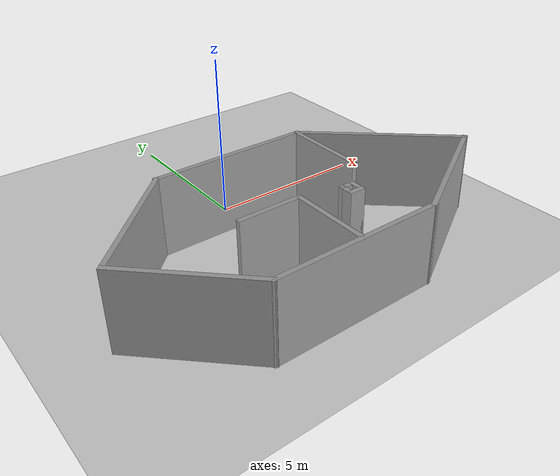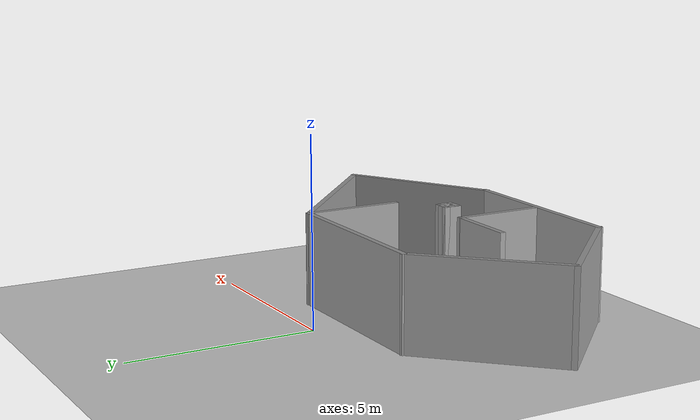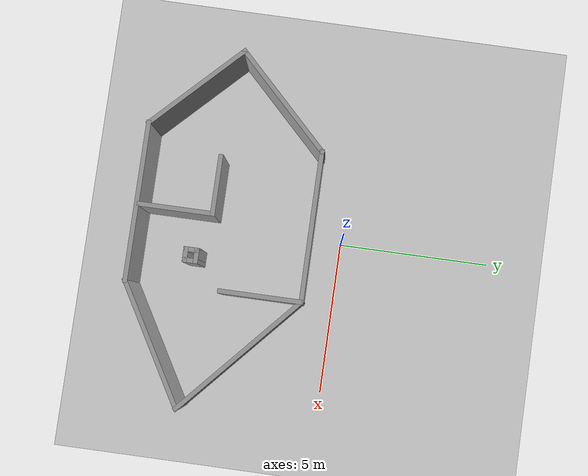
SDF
<sdf version="1.7">
 <world name="default">
  <light name="sun" type="directional">
   <pose>0 0 10 0 -0 0</pose>
   <diffuse>0.8 0.8 0.8 1</diffuse>
   <specular>0.2 0.2 0.2 1</specular>
   <attenuation>
    <range>1000</range>
    <constant>0.9</constant>
    <linear>0.01</linear>
    <quadratic>0.001</quadratic>
   </attenuation>
   <direction>-0.5 0.1 -0.9</direction>
   <spot><inner_angle>0</inner_angle><outer_angle>0</outer_angle><falloff>0</falloff></spot>
  </light>
  <model name="ground_plane">
   <static>1</static>
   <link name="link">
    <collision name="collision">
     <geometry><plane><normal>0 0 1</normal><size>100 100</size></plane></geometry>
     <surface>
      <contact><collide_bitmask>65535</collide_bitmask></contact>
      <friction><ode><mu>100</mu><mu2>50</mu2></ode></friction>
     </surface>
    </collision>
    <visual name="visual">
     <cast_shadows>0</cast_shadows>
     <geometry><plane><normal>0 0 1</normal><size>100 100</size></plane></geometry>
     <material>
      <script><uri>file://media/materials/scripts/gazebo.material</uri><name>Gazebo/Grey</name></script>
     </material>
    </visual>
   </link>
  </model>
  <gravity>0 0 -9.8</gravity>
  <magnetic_field>6e-06 2.3e-05 -4.2e-05</magnetic_field>
  <atmosphere type="adiabatic"/>
  <physics type="ode">
   <max_step_size>0.001</max_step_size>
   <real_time_factor>1</real_time_factor>
   <real_time_update_rate>1000</real_time_update_rate>
  </physics>
  <scene><ambient>0.4 0.4 0.4 1</ambient><background>0.7 0.7 0.7 1</background><shadows>1</shadows></scene>
  <audio><device>default</device></audio>
  <spherical_coordinates>
   <surface_model>EARTH_WGS84</surface_model>
   <latitude_deg>0</latitude_deg>
   <longitude_deg>0</longitude_deg>
   <elevation>0</elevation>
   <heading_deg>0</heading_deg>
  </spherical_coordinates>
  <model name="my_custom_World">
   <pose>0.175571 -3.36878 0 0 -0 0</pose>
   <link name="Wall_19">
    <collision name="Wall_19_Collision">
     <geometry><box><size>5 0.15 2.5</size></box></geometry>
     <pose>0 0 1.25 0 -0 0</pose>
    </collision>
    <visual name="Wall_19_Visual">
     <pose>0 0 1.25 0 -0 0</pose>
     <geometry><box><size>5 0.15 2.5</size></box></geometry>
     <material>
      <script><uri>file://media/materials/scripts/gazebo.material</uri><name>Gazebo/Grey</name></script>
      <ambient>1 1 1 1</ambient>
     </material>
     <meta><layer>0</layer></meta>
    </visual>
    <pose>-0.470571 2.35878 0 0 -0 3.14159</pose>
   </link>
   <link name="Wall_20">
    <collision name="Wall_20_Collision">
     <geometry><box><size>4.25 0.15 2.5</size></box></geometry>
     <pose>0 0 1.25 0 -0 0</pose>
    </collision>
    <visual name="Wall_20_Visual">
     <pose>0 0 1.25 0 -0 0</pose>
     <geometry><box><size>4.25 0.15 2.5</size></box></geometry>
     <material>
      <script><uri>file://media/materials/scripts/gazebo.material</uri><name>Gazebo/Grey</name></script>
      <ambient>1 1 1 1</ambient>
     </material>
     <meta><layer>0</layer></meta>
    </visual>
    <pose>-4.34514 0.909214 0 0 -0 -2.35619</pose>
   </link>
   <link name="Wall_21">
    <collision name="Wall_21_Collision">
     <geometry><box><size>4 0.15 2.5</size></box></geometry>
     <pose>0 0 1.25 0 -0 0</pose>
    </collision>
    <visual name="Wall_21_Visual">
     <pose>0 0 1.25 0 -0 0</pose>
     <geometry><box><size>4 0.15 2.5</size></box></geometry>
     <material>
      <script><uri>file://media/materials/scripts/gazebo.material</uri><name>Gazebo/Grey</name></script>
      <ambient>1 1 1 1</ambient>
     </material>
     <meta><layer>0</layer></meta>
    </visual>
    <pose>-4.43353 -1.90154 0 0 -0 -0.785398</pose>
   </link>
   <link name="Wall_22">
    <collision name="Wall_22_Collision">
     <geometry><box><size>5.25 0.15 2.5</size></box></geometry>
     <pose>0 0 1.25 0 -0 0</pose>
    </collision>
    <visual name="Wall_22_Visual">
     <pose>0 0 1.25 0 -0 0</pose>
     <geometry><box><size>5.25 0.15 2.5</size></box></geometry>
     <material>
      <script><uri>file://media/materials/scripts/gazebo.material</uri><name>Gazebo/Grey</name></script>
      <ambient>1 1 1 1</ambient>
     </material>
     <meta><layer>0</layer></meta>
    </visual>
    <pose>-0.522348 -3.26272 0 0 -0 0</pose>
   </link>
   <link name="Wall_23">
    <collision name="Wall_23_Collision">
     <geometry><box><size>4.5 0.15 2.5</size></box></geometry>
     <pose>0 0 1.25 0 -0 0</pose>
    </collision>
    <visual name="Wall_23_Visual">
     <pose>0 0 1.25 0 -0 0</pose>
     <geometry><box><size>4.5 0.15 2.5</size></box></geometry>
     <material>
      <script><uri>file://media/materials/scripts/gazebo.material</uri><name>Gazebo/Grey</name></script>
      <ambient>1 1 1 1</ambient>
     </material>
     <meta><layer>0</layer></meta>
    </visual>
    <pose>3.91126 -2.17522 0 0 -0 0.523599</pose>
   </link>
   <link name="Wall_24">
    <collision name="Wall_24_Collision">
     <geometry><box><size>5.31016 0.15 2.5</size></box></geometry>
     <pose>0 0 1.25 0 -0 0</pose>
    </collision>
    <visual name="Wall_24_Visual">
     <pose>0 0 1.25 0 -0 0</pose>
     <geometry><box><size>5.31016 0.15 2.5</size></box></geometry>
     <material>
      <script><uri>file://media/materials/scripts/gazebo.material</uri><name>Gazebo/Grey</name></script>
      <ambient>1 1 1 1</ambient>
     </material>
     <meta><layer>0</layer></meta>
    </visual>
    <pose>3.87465 0.635533 0 0 -0 2.4102</pose>
   </link>
   <link name="Wall_25">
    <collision name="Wall_25_Collision">
     <geometry><box><size>2.75 0.15 2.5</size></box></geometry>
     <pose>0 0 1.25 0 -0 0</pose>
    </collision>
    <visual name="Wall_25_Visual">
     <pose>0 0 1.25 0 -0 0</pose>
     <geometry><box><size>2.75 0.15 2.5</size></box></geometry>
     <material>
      <script><uri>file://media/materials/scripts/gazebo.material</uri><name>Gazebo/Grey</name></script>
      <ambient>1 1 1 1</ambient>
     </material>
     <meta><layer>0</layer></meta>
    </visual>
    <pose>1.95443 1.05878 0 0 -0 -1.5708</pose>
   </link>
   <link name="Wall_27">
    <collision name="Wall_27_Collision">
     <geometry><box><size>2.5 0.15 2.5</size></box></geometry>
     <pose>0 0 1.25 0 -0 0</pose>
    </collision>
    <visual name="Wall_27_Visual">
     <pose>0 0 1.25 0 -0 0</pose>
     <geometry><box><size>2.5 0.15 2.5</size></box></geometry>
     <material>
      <script><uri>file://media/materials/scripts/gazebo.material</uri><name>Gazebo/Grey</name></script>
      <ambient>1 1 1 1</ambient>
     </material>
     <meta><layer>0</layer></meta>
    </visual>
    <pose>-0.445571 -1.99622 0 0 -0 -1.5708</pose>
   </link>
   <link name="Wall_29">
    <collision name="Wall_29_Collision">
     <geometry><box><size>2 0.15 2.5</size></box></geometry>
     <pose>0 0 1.25 0 -0 0</pose>
    </collision>
    <visual name="Wall_29_Visual">
     <pose>0 0 1.25 0 -0 0</pose>
     <geometry><box><size>2 0.15 2.5</size></box></geometry>
     <material>
      <script><uri>file://media/materials/scripts/gazebo.material</uri><name>Gazebo/Grey</name></script>
      <ambient>1 1 1 1</ambient>
     </material>
     <meta><layer>0</layer></meta>
    </visual>
    <pose>-1.37057 -0.821217 0 0 -0 3.14159</pose>
   </link>
   <link name="Wall_31">
    <collision name="Wall_31_Collision">
     <geometry><box><size>0.5 0.15 2.5</size></box></geometry>
     <pose>0 0 1.25 0 -0 0</pose>
    </collision>
    <visual name="Wall_31_Visual">
     <pose>0 0 1.25 0 -0 0</pose>
     <geometry><box><size>0.5 0.15 2.5</size></box></geometry>
     <material>
      <script><uri>file://media/materials/scripts/gazebo.material</uri><name>Gazebo/Grey</name></script>
      <ambient>1 1 1 1</ambient>
     </material>
     <meta><layer>0</layer></meta>
    </visual>
    <pose>0.774429 -1.31622 0 0 -0 -1.5708</pose>
   </link>
   <link name="Wall_32">
    <collision name="Wall_32_Collision">
     <geometry><box><size>0.5 0.15 2.5</size></box></geometry>
     <pose>0 0 1.25 0 -0 0</pose>
    </collision>
    <visual name="Wall_32_Visual">
     <pose>0 0 1.25 0 -0 0</pose>
     <geometry><box><size>0.5 0.15 2.5</size></box></geometry>
     <material>
      <script><uri>file://media/materials/scripts/gazebo.material</uri><name>Gazebo/Grey</name></script>
      <ambient>1 1 1 1</ambient>
     </material>
     <meta><layer>0</layer></meta>
    </visual>
    <pose>0.949429 -1.49122 0 0 -0 0</pose>
   </link>
   <link name="Wall_33">
    <collision name="Wall_33_Collision">
     <geometry><box><size>0.5 0.15 2.5</size></box></geometry>
     <pose>0 0 1.25 0 -0 0</pose>
    </collision>
    <visual name="Wall_33_Visual">
     <pose>0 0 1.25 0 -0 0</pose>
     <geometry><box><size>0.5 0.15 2.5</size></box></geometry>
     <material>
      <script><uri>file://media/materials/scripts/gazebo.material</uri><name>Gazebo/Grey</name></script>
      <ambient>1 1 1 1</ambient>
     </material>
     <meta><layer>0</layer></meta>
    </visual>
    <pose>1.12443 -1.31622 0 0 -0 1.5708</pose>
   </link>
   <link name="Wall_34">
    <collision name="Wall_34_Collision">
     <geometry><box><size>0.5 0.15 2.5</size></box></geometry>
     <pose>0 0 1.25 0 -0 0</pose>
    </collision>
    <visual name="Wall_34_Visual">
     <pose>0 0 1.25 0 -0 0</pose>
     <geometry><box><size>0.5 0.15 2.5</size></box></geometry>
     <material>
      <script><uri>file://media/materials/scripts/gazebo.material</uri><name>Gazebo/Grey</name></script>
      <ambient>1 1 1 1</ambient>
     </material>
     <meta><layer>0</layer></meta>
    </visual>
    <pose>0.949429 -1.14122 0 0 -0 3.14159</pose>
   </link>
   <static>1</static>
  </model>
 </world>
</sdf>
